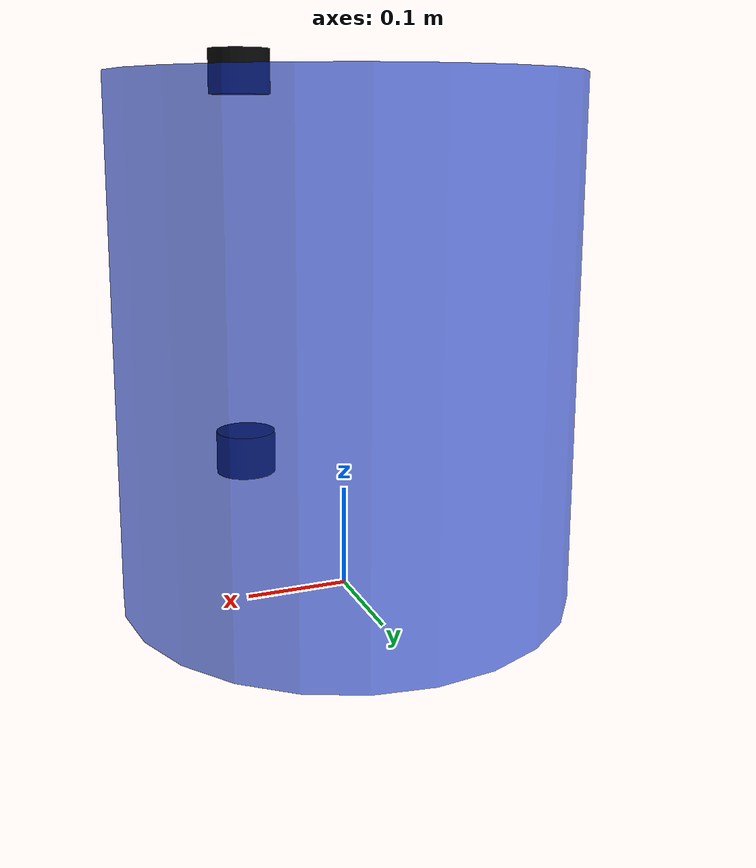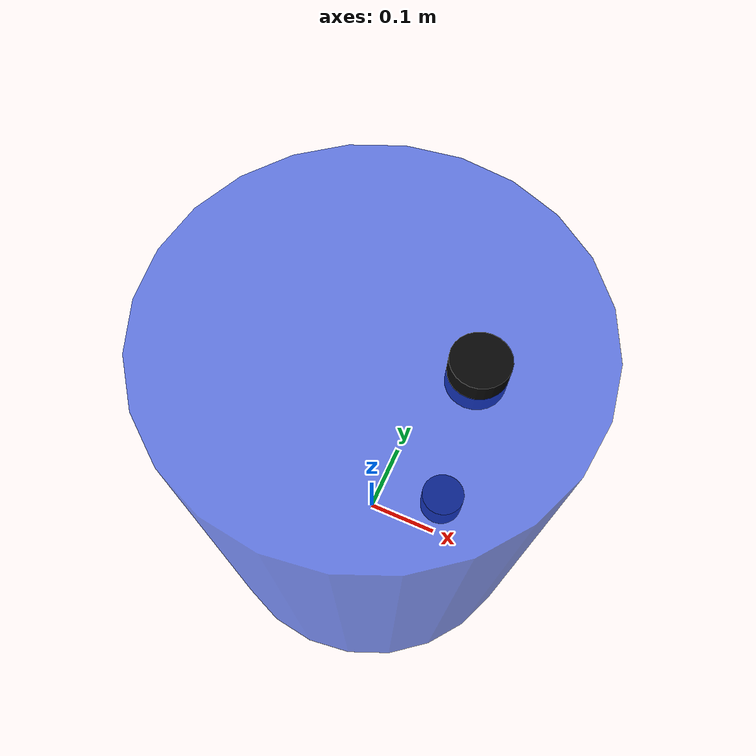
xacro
<?xml version="1.0"?>
<robot xmlns:xacro="http://www.ros.org/wiki/xacro" name="rk3576_footbath">
  <xacro:arg name="base_radius" default="0.22"/>
  <xacro:arg name="base_height" default="0.50"/>
  <xacro:arg name="base_link_z" default="0.25"/>

  <xacro:arg name="laser_high_x" default="0.10"/>
  <xacro:arg name="laser_high_y" default="0.0"/>
  <xacro:arg name="laser_high_z" default="0.50"/>
  <xacro:arg name="laser_high_roll" default="0.0"/>
  <xacro:arg name="laser_high_pitch" default="0.0"/>
  <xacro:arg name="laser_high_yaw" default="0.0"/>
  <xacro:arg name="laser_low_x" default="0.10"/>
  <xacro:arg name="laser_low_y" default="0.0"/>
  <xacro:arg name="laser_low_z" default="0.15"/>
  <xacro:arg name="laser_low_roll" default="0.0"/>
  <xacro:arg name="laser_low_pitch" default="0.0"/>
  <xacro:arg name="laser_low_yaw" default="0.0"/>

  <xacro:arg name="imu_x" default="0.0"/>
  <xacro:arg name="imu_y" default="0.0"/>
  <xacro:arg name="imu_z" default="0.195"/>
  <xacro:arg name="imu_roll" default="0.0"/>
  <xacro:arg name="imu_pitch" default="0.0"/>
  <xacro:arg name="imu_yaw" default="0.0"/>

  <xacro:arg name="tof_left_x" default="0.155563"/>
  <xacro:arg name="tof_left_y" default="0.155563"/>
  <xacro:arg name="tof_left_z" default="0.15"/>
  <xacro:arg name="tof_left_pitch" default="0.0"/>
  <xacro:arg name="tof_left_yaw" default="0.7853981634"/>
  <xacro:arg name="tof_right_x" default="0.155563"/>
  <xacro:arg name="tof_right_y" default="-0.155563"/>
  <xacro:arg name="tof_right_z" default="0.15"/>
  <xacro:arg name="tof_right_pitch" default="0.0"/>
  <xacro:arg name="tof_right_yaw" default="-0.7853981634"/>

  <xacro:arg name="ultrasonic_x" default="0.135"/>
  <xacro:arg name="ultrasonic_y" default="0.0"/>
  <xacro:arg name="ultrasonic_z" default="0.24"/>
  <xacro:arg name="ultrasonic_yaw" default="0.0"/>

  <xacro:property name="base_radius_value" value="$(arg base_radius)"/>
  <xacro:property name="base_height_value" value="$(arg base_height)"/>
  <material name="footbath_blue"><color rgba="0.10 0.25 0.90 0.65"/></material>
  <material name="sensor_black"><color rgba="0.03 0.03 0.03 0.9"/></material>

  <link name="base_footprint"/>
  <link name="base_link">
    <visual>
      <geometry><cylinder radius="${base_radius_value}" length="${base_height_value}"/></geometry>
      <material name="footbath_blue"/>
    </visual>
    <collision><geometry><cylinder radius="${base_radius_value}" length="${base_height_value}"/></geometry></collision>
    <inertial>
      <mass value="1.0"/>
      <inertia ixx="0.032933" ixy="0" ixz="0" iyy="0.032933" iyz="0" izz="0.0242"/>
    </inertial>
  </link>
  <joint name="base_footprint_joint" type="fixed">
    <parent link="base_footprint"/><child link="base_link"/>
    <origin xyz="0 0 $(arg base_link_z)" rpy="0 0 0"/>
  </joint>

  <!-- Sensor coordinates are absolute heights above base_footprint. -->
  <link name="laser_high_frame">
    <visual><geometry><cylinder radius="0.0275" length="0.0395"/></geometry><material name="sensor_black"/></visual>
  </link>
  <joint name="laser_high_joint" type="fixed">
    <parent link="base_footprint"/><child link="laser_high_frame"/>
    <origin xyz="$(arg laser_high_x) $(arg laser_high_y) $(arg laser_high_z)"
      rpy="$(arg laser_high_roll) $(arg laser_high_pitch) $(arg laser_high_yaw)"/>
  </joint>

  <link name="laser_low_frame">
    <visual><geometry><cylinder radius="0.0275" length="0.0395"/></geometry><material name="sensor_black"/></visual>
  </link>
  <joint name="laser_low_joint" type="fixed">
    <parent link="base_footprint"/><child link="laser_low_frame"/>
    <origin xyz="$(arg laser_low_x) $(arg laser_low_y) $(arg laser_low_z)"
      rpy="$(arg laser_low_roll) $(arg laser_low_pitch) $(arg laser_low_yaw)"/>
  </joint>

  <link name="imu_link"/>
  <joint name="imu_joint" type="fixed">
    <parent link="base_footprint"/><child link="imu_link"/>
    <origin xyz="$(arg imu_x) $(arg imu_y) $(arg imu_z)"
      rpy="$(arg imu_roll) $(arg imu_pitch) $(arg imu_yaw)"/>
  </joint>

  <link name="tof_left_link"/>
  <joint name="tof_left_joint" type="fixed">
    <parent link="base_footprint"/><child link="tof_left_link"/>
    <origin xyz="$(arg tof_left_x) $(arg tof_left_y) $(arg tof_left_z)"
      rpy="0 $(arg tof_left_pitch) $(arg tof_left_yaw)"/>
  </joint>
  <link name="tof_right_link"/>
  <joint name="tof_right_joint" type="fixed">
    <parent link="base_footprint"/><child link="tof_right_link"/>
    <origin xyz="$(arg tof_right_x) $(arg tof_right_y) $(arg tof_right_z)"
      rpy="0 $(arg tof_right_pitch) $(arg tof_right_yaw)"/>
  </joint>

  <link name="ultrasonic_link"/>
  <joint name="ultrasonic_joint" type="fixed">
    <parent link="base_footprint"/><child link="ultrasonic_link"/>
    <origin xyz="$(arg ultrasonic_x) $(arg ultrasonic_y) $(arg ultrasonic_z)"
      rpy="0 0 $(arg ultrasonic_yaw)"/>
  </joint>
  <!-- User-confirmed 45deg mounts recessed 0.10m along the beam from 0.22m body radius. -->
  <xacro:arg name="ultrasonic_side_x" default="0.084853"/>
  <xacro:arg name="ultrasonic_side_y" default="0.084853"/>
  <xacro:arg name="ultrasonic_side_z" default="0.24"/>
  <xacro:arg name="ultrasonic_side_yaw" default="0.785398"/>
  <link name="ultrasonic_left_link"/>
  <joint name="ultrasonic_left_joint" type="fixed">
    <parent link="base_footprint"/><child link="ultrasonic_left_link"/>
    <origin xyz="$(arg ultrasonic_side_x) $(arg ultrasonic_side_y) $(arg ultrasonic_side_z)" rpy="0 0 $(arg ultrasonic_side_yaw)"/>
  </joint>
  <link name="ultrasonic_right_link"/>
  <joint name="ultrasonic_right_joint" type="fixed">
    <parent link="base_footprint"/><child link="ultrasonic_right_link"/>
    <origin xyz="$(arg ultrasonic_side_x) -$(arg ultrasonic_side_y) $(arg ultrasonic_side_z)" rpy="0 0 -$(arg ultrasonic_side_yaw)"/>
  </joint>
</robot>
